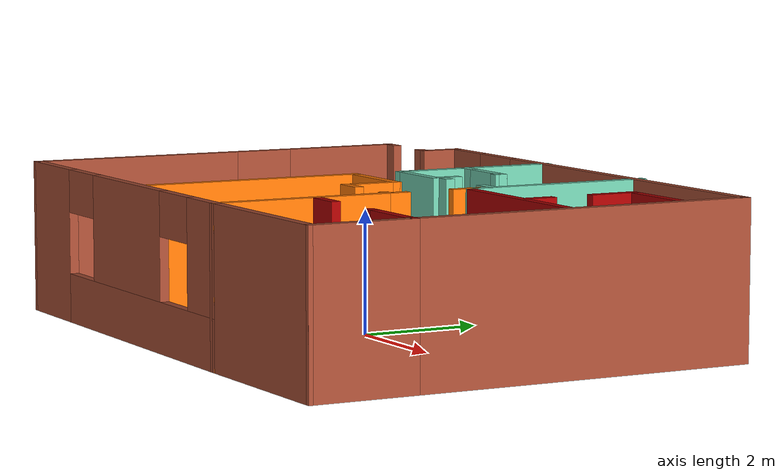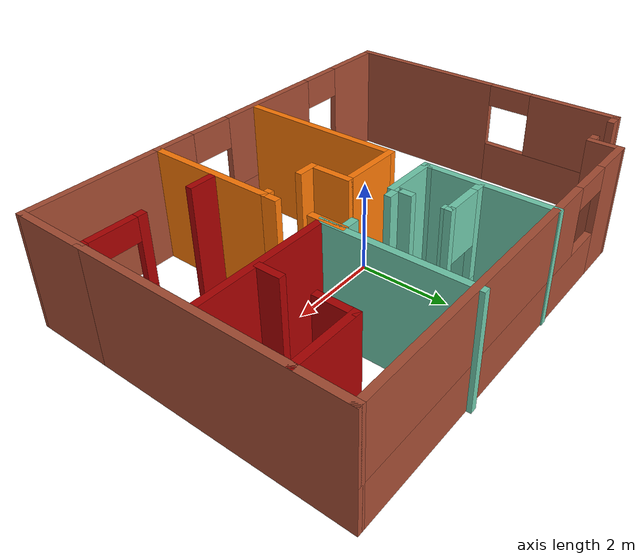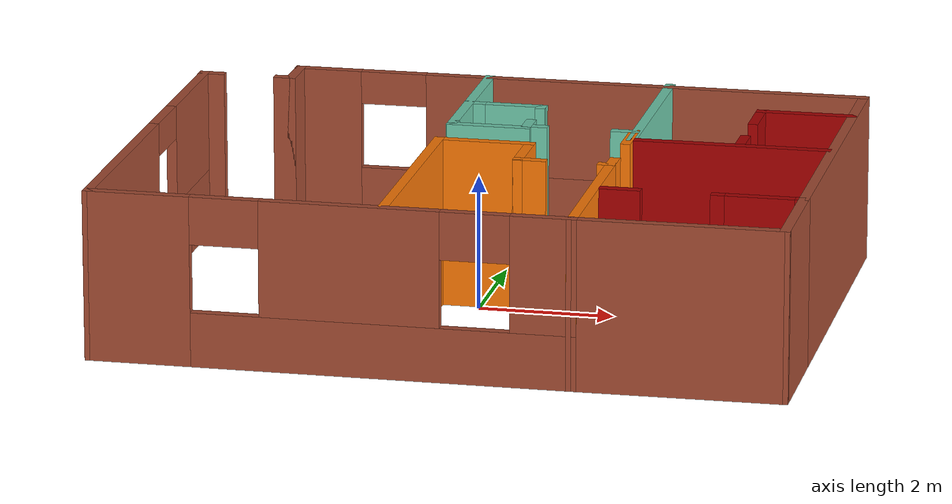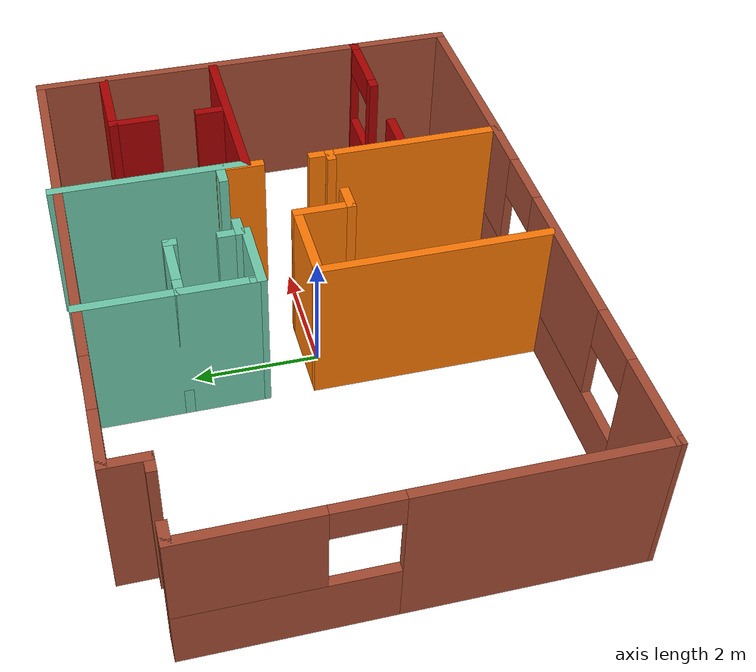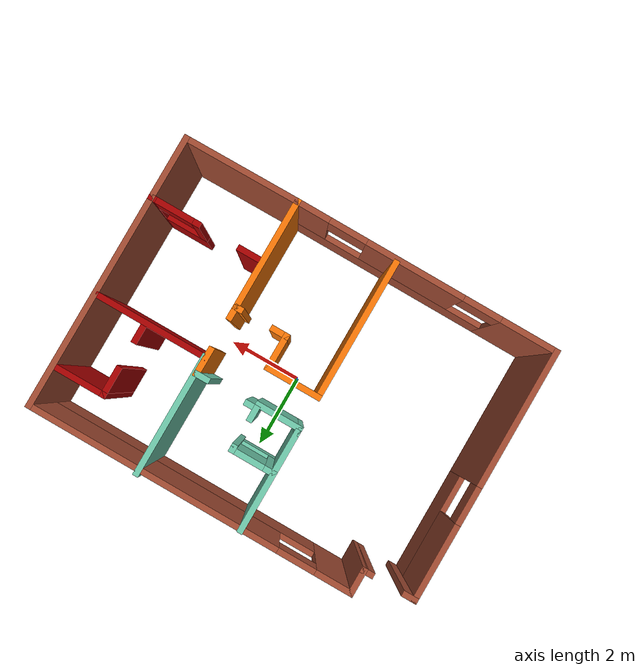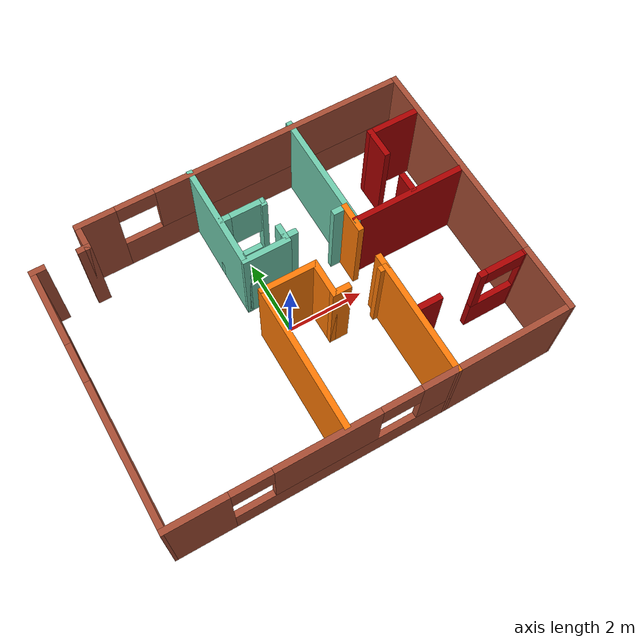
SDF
<?xml version='1.0'?>
<sdf version='1.6'>
  <model name='Building'>
    <pose frame=''>0.096596 0.097797 0 0 -0 0</pose>
    <link name='Wall_0'>
      <pose frame=''>-4.30016 2.9635 0 0 -0 0</pose>
      <visual name='Wall_0_Visual_0'>
        <pose frame=''>-0.550505 0 1.25 0 -0 0</pose>
        <geometry>
          <box>
            <size>0.39899 0.15 2.5</size>
          </box>
        </geometry>
        <material>
          <script>
            <uri>file://media/materials/scripts/gazebo.material</uri>
            <name>Gazebo/Bricks</name>
          </script>
          <ambient>0.666667 0 0 1</ambient>
        </material>
        <meta>
          <layer>0</layer>
        </meta>
      </visual>
      <collision name='Wall_0_Collision_0'>
        <geometry>
          <box>
            <size>0.39899 0.15 2.5</size>
          </box>
        </geometry>
        <pose frame=''>-0.550505 0 1.25 0 -0 0</pose>
      </collision>
      <visual name='Wall_0_Visual_1'>
        <pose frame=''>0.581495 0 1.25 0 -0 0</pose>
        <geometry>
          <box>
            <size>0.33701 0.15 2.5</size>
          </box>
        </geometry>
        <material>
          <script>
            <uri>file://media/materials/scripts/gazebo.material</uri>
            <name>Gazebo/Bricks</name>
          </script>
          <ambient>0.666667 0 0 1</ambient>
        </material>
        <meta>
          <layer>0</layer>
        </meta>
      </visual>
      <collision name='Wall_0_Collision_1'>
        <geometry>
          <box>
            <size>0.33701 0.15 2.5</size>
          </box>
        </geometry>
        <pose frame=''>0.581495 0 1.25 0 -0 0</pose>
      </collision>
    </link>
    <link name='Wall_1'>
      <collision name='Wall_1_Collision'>
        <geometry>
          <box>
            <size>0.75 0.15 2.5</size>
          </box>
        </geometry>
        <pose frame=''>0 0 1.25 0 -0 0</pose>
      </collision>
      <visual name='Wall_1_Visual'>
        <pose frame=''>0 0 1.25 0 -0 0</pose>
        <geometry>
          <box>
            <size>0.75 0.15 2.5</size>
          </box>
        </geometry>
        <material>
          <script>
            <uri>file://media/materials/scripts/gazebo.material</uri>
            <name>Gazebo/Bricks</name>
          </script>
          <ambient>0.666667 0 0 1</ambient>
        </material>
        <meta>
          <layer>0</layer>
        </meta>
      </visual>
      <pose frame=''>-3.62515 3.2635 0 0 -0 1.5708</pose>
    </link>
    <link name='Wall_11'>
      <pose frame=''>0.391864 1.53887 0 0 -0 1.5708</pose>
      <visual name='Wall_11_Visual_0'>
        <pose frame=''>-0.412394 0 1.25 0 -0 0</pose>
        <geometry>
          <box>
            <size>0.425213 0.15 2.5</size>
          </box>
        </geometry>
        <material>
          <script>
            <uri>file://media/materials/scripts/gazebo.material</uri>
            <name>Gazebo/Grey</name>
          </script>
          <ambient>0.435294 0.796078 0.67451 1</ambient>
        </material>
        <meta>
          <layer>0</layer>
        </meta>
      </visual>
      <collision name='Wall_11_Collision_0'>
        <geometry>
          <box>
            <size>0.425213 0.15 2.5</size>
          </box>
        </geometry>
        <pose frame=''>-0.412394 0 1.25 0 -0 0</pose>
      </collision>
      <visual name='Wall_11_Visual_1'>
        <pose frame=''>0.515606 0 1.25 0 -0 0</pose>
        <geometry>
          <box>
            <size>0.218787 0.15 2.5</size>
          </box>
        </geometry>
        <material>
          <script>
            <uri>file://media/materials/scripts/gazebo.material</uri>
            <name>Gazebo/Grey</name>
          </script>
          <ambient>0.435294 0.796078 0.67451 1</ambient>
        </material>
        <meta>
          <layer>0</layer>
        </meta>
      </visual>
      <collision name='Wall_11_Collision_1'>
        <geometry>
          <box>
            <size>0.218787 0.15 2.5</size>
          </box>
        </geometry>
        <pose frame=''>0.515606 0 1.25 0 -0 0</pose>
      </collision>
    </link>
    <link name='Wall_12'>
      <pose frame=''>-0.158136 2.08887 0 0 -0 3.14159</pose>
      <visual name='Wall_12_Visual_0'>
        <pose frame=''>-0.568138 0 1.25 0 -0 0</pose>
        <geometry>
          <box>
            <size>0.113724 0.15 2.5</size>
          </box>
        </geometry>
        <material>
          <script>
            <uri>file://media/materials/scripts/gazebo.material</uri>
            <name>Gazebo/Grey</name>
          </script>
          <ambient>0.435294 0.796078 0.67451 1</ambient>
        </material>
        <meta>
          <layer>0</layer>
        </meta>
      </visual>
      <collision name='Wall_12_Collision_0'>
        <geometry>
          <box>
            <size>0.113724 0.15 2.5</size>
          </box>
        </geometry>
        <pose frame=''>-0.568138 0 1.25 0 -0 0</pose>
      </collision>
      <visual name='Wall_12_Visual_1'>
        <pose frame=''>0.056862 0 0.25 0 -0 0</pose>
        <geometry>
          <box>
            <size>1.13628 0.15 0.5</size>
          </box>
        </geometry>
        <material>
          <script>
            <uri>file://media/materials/scripts/gazebo.material</uri>
            <name>Gazebo/Grey</name>
          </script>
          <ambient>0.435294 0.796078 0.67451 1</ambient>
        </material>
        <meta>
          <layer>0</layer>
        </meta>
      </visual>
      <collision name='Wall_12_Collision_1'>
        <geometry>
          <box>
            <size>1.13628 0.15 0.5</size>
          </box>
        </geometry>
        <pose frame=''>0.056862 0 0.25 0 -0 0</pose>
      </collision>
      <visual name='Wall_12_Visual_2'>
        <pose frame=''>0.456862 0 1.5 0 -0 0</pose>
        <geometry>
          <box>
            <size>0.336276 0.15 2</size>
          </box>
        </geometry>
        <material>
          <script>
            <uri>file://media/materials/scripts/gazebo.material</uri>
            <name>Gazebo/Grey</name>
          </script>
          <ambient>0.435294 0.796078 0.67451 1</ambient>
        </material>
        <meta>
          <layer>0</layer>
        </meta>
      </visual>
      <collision name='Wall_12_Collision_2'>
        <geometry>
          <box>
            <size>0.336276 0.15 2</size>
          </box>
        </geometry>
        <pose frame=''>0.456862 0 1.5 0 -0 0</pose>
      </collision>
      <visual name='Wall_12_Visual_3'>
        <pose frame=''>-0.111276 0 1.9 0 -0 0</pose>
        <geometry>
          <box>
            <size>0.8 0.15 1.2</size>
          </box>
        </geometry>
        <material>
          <script>
            <uri>file://media/materials/scripts/gazebo.material</uri>
            <name>Gazebo/Grey</name>
          </script>
          <ambient>0.435294 0.796078 0.67451 1</ambient>
        </material>
        <meta>
          <layer>0</layer>
        </meta>
      </visual>
      <collision name='Wall_12_Collision_3'>
        <geometry>
          <box>
            <size>0.8 0.15 1.2</size>
          </box>
        </geometry>
        <pose frame=''>-0.111276 0 1.9 0 -0 0</pose>
      </collision>
    </link>
    <link name='Wall_16'>
      <pose frame=''>1.19186 0.988869 0 0 -0 0</pose>
      <visual name='Wall_16_Visual_0'>
        <pose frame=''>-0.680281 0 1.25 0 -0 0</pose>
        <geometry>
          <box>
            <size>0.389438 0.15 2.5</size>
          </box>
        </geometry>
        <material>
          <script>
            <uri>file://media/materials/scripts/gazebo.material</uri>
            <name>Gazebo/Grey</name>
          </script>
          <ambient>0.435294 0.796078 0.67451 1</ambient>
        </material>
        <meta>
          <layer>0</layer>
        </meta>
      </visual>
      <collision name='Wall_16_Collision_0'>
        <geometry>
          <box>
            <size>0.389438 0.15 2.5</size>
          </box>
        </geometry>
        <pose frame=''>-0.680281 0 1.25 0 -0 0</pose>
      </collision>
      <visual name='Wall_16_Visual_1'>
        <pose frame=''>0.663744 0 1.25 0 -0 0</pose>
        <geometry>
          <box>
            <size>0.422512 0.15 2.5</size>
          </box>
        </geometry>
        <material>
          <script>
            <uri>file://media/materials/scripts/gazebo.material</uri>
            <name>Gazebo/Grey</name>
          </script>
          <ambient>0.435294 0.796078 0.67451 1</ambient>
        </material>
        <meta>
          <layer>0</layer>
        </meta>
      </visual>
      <collision name='Wall_16_Collision_1'>
        <geometry>
          <box>
            <size>0.422512 0.15 2.5</size>
          </box>
        </geometry>
        <pose frame=''>0.663744 0 1.25 0 -0 0</pose>
      </collision>
    </link>
    <link name='Wall_18'>
      <collision name='Wall_18_Collision'>
        <geometry>
          <box>
            <size>0.25 0.15 2.5</size>
          </box>
        </geometry>
        <pose frame=''>0 0 1.25 0 -0 0</pose>
      </collision>
      <visual name='Wall_18_Visual'>
        <pose frame=''>0 0 1.25 0 -0 0</pose>
        <geometry>
          <box>
            <size>0.25 0.15 2.5</size>
          </box>
        </geometry>
        <material>
          <script>
            <uri>file://media/materials/scripts/gazebo.material</uri>
            <name>Gazebo/Grey</name>
          </script>
          <ambient>0.435294 0.796078 0.67451 1</ambient>
        </material>
        <meta>
          <layer>0</layer>
        </meta>
      </visual>
      <pose frame=''>-0.708136 0.938869 0 0 0 -1.5708</pose>
    </link>
    <link name='Wall_19'>
      <collision name='Wall_19_Collision'>
        <geometry>
          <box>
            <size>1.25 0.15 2.5</size>
          </box>
        </geometry>
        <pose frame=''>0 0 1.25 0 -0 0</pose>
      </collision>
      <visual name='Wall_19_Visual'>
        <pose frame=''>0 0 1.25 0 -0 0</pose>
        <geometry>
          <box>
            <size>1.25 0.15 2.5</size>
          </box>
        </geometry>
        <material>
          <script>
            <uri>file://media/materials/scripts/gazebo.material</uri>
            <name>Gazebo/Grey</name>
          </script>
          <ambient>0.435294 0.796078 0.67451 1</ambient>
        </material>
        <meta>
          <layer>0</layer>
        </meta>
      </visual>
      <pose frame=''>-0.158136 0.888869 0 0 -0 0</pose>
    </link>
    <link name='Wall_2'>
      <pose frame=''>0.674845 3.5635 0 0 -0 0</pose>
      <visual name='Wall_2_Visual_0'>
        <pose frame=''>-3.86007 0 1.25 0 -0 0</pose>
        <geometry>
          <box>
            <size>1.02985 0.15 2.5</size>
          </box>
        </geometry>
        <material>
          <script>
            <uri>file://media/materials/scripts/gazebo.material</uri>
            <name>Gazebo/Bricks</name>
          </script>
          <ambient>0.666667 0 0 1</ambient>
        </material>
        <meta>
          <layer>0</layer>
        </meta>
      </visual>
      <collision name='Wall_2_Collision_0'>
        <geometry>
          <box>
            <size>1.02985 0.15 2.5</size>
          </box>
        </geometry>
        <pose frame=''>-3.86007 0 1.25 0 -0 0</pose>
      </collision>
      <visual name='Wall_2_Visual_1'>
        <pose frame=''>0.514926 0 0.5 0 -0 0</pose>
        <geometry>
          <box>
            <size>7.72015 0.15 1</size>
          </box>
        </geometry>
        <material>
          <script>
            <uri>file://media/materials/scripts/gazebo.material</uri>
            <name>Gazebo/Bricks</name>
          </script>
          <ambient>0.666667 0 0 1</ambient>
        </material>
        <meta>
          <layer>0</layer>
        </meta>
      </visual>
      <collision name='Wall_2_Collision_1'>
        <geometry>
          <box>
            <size>7.72015 0.15 1</size>
          </box>
        </geometry>
        <pose frame=''>0.514926 0 0.5 0 -0 0</pose>
      </collision>
      <visual name='Wall_2_Visual_2'>
        <pose frame=''>1.01493 0 1.75 0 -0 0</pose>
        <geometry>
          <box>
            <size>6.72015 0.15 1.5</size>
          </box>
        </geometry>
        <material>
          <script>
            <uri>file://media/materials/scripts/gazebo.material</uri>
            <name>Gazebo/Bricks</name>
          </script>
          <ambient>0.666667 0 0 1</ambient>
        </material>
        <meta>
          <layer>0</layer>
        </meta>
      </visual>
      <collision name='Wall_2_Collision_2'>
        <geometry>
          <box>
            <size>6.72015 0.15 1.5</size>
          </box>
        </geometry>
        <pose frame=''>1.01493 0 1.75 0 -0 0</pose>
      </collision>
      <visual name='Wall_2_Visual_3'>
        <pose frame=''>-2.84515 0 2.25 0 -0 0</pose>
        <geometry>
          <box>
            <size>1 0.15 0.5</size>
          </box>
        </geometry>
        <material>
          <script>
            <uri>file://media/materials/scripts/gazebo.material</uri>
            <name>Gazebo/Bricks</name>
          </script>
          <ambient>0.666667 0 0 1</ambient>
        </material>
        <meta>
          <layer>0</layer>
        </meta>
      </visual>
      <collision name='Wall_2_Collision_3'>
        <geometry>
          <box>
            <size>1 0.15 0.5</size>
          </box>
        </geometry>
        <pose frame=''>-2.84515 0 2.25 0 -0 0</pose>
      </collision>
    </link>
    <link name='Wall_3'>
      <collision name='Wall_3_Collision'>
        <geometry>
          <box>
            <size>5.75 0.15 2.5</size>
          </box>
        </geometry>
        <pose frame=''>0 0 1.25 0 -0 0</pose>
      </collision>
      <visual name='Wall_3_Visual'>
        <pose frame=''>0 0 1.25 0 -0 0</pose>
        <geometry>
          <box>
            <size>5.75 0.15 2.5</size>
          </box>
        </geometry>
        <material>
          <script>
            <uri>file://media/materials/scripts/gazebo.material</uri>
            <name>Gazebo/Bricks</name>
          </script>
          <ambient>0.666667 0 0 1</ambient>
        </material>
        <meta>
          <layer>0</layer>
        </meta>
      </visual>
      <pose frame=''>4.97485 0.7635 0 0 0 -1.5708</pose>
    </link>
    <link name='Wall_37'>
      <collision name='Wall_37_Collision'>
        <geometry>
          <box>
            <size>3.25 0.15 2.5</size>
          </box>
        </geometry>
        <pose frame=''>0 0 1.25 0 -0 0</pose>
      </collision>
      <visual name='Wall_37_Visual'>
        <pose frame=''>0 0 1.25 0 -0 0</pose>
        <geometry>
          <box>
            <size>3.25 0.15 2.5</size>
          </box>
        </geometry>
        <material>
          <script>
            <uri>file://media/materials/scripts/gazebo.material</uri>
            <name>Gazebo/Grey</name>
          </script>
          <ambient>0.435294 0.796078 0.67451 1</ambient>
        </material>
        <meta>
          <layer>0</layer>
        </meta>
      </visual>
      <pose frame=''>2.03032 2.10888 0 0 0 -1.5708</pose>
    </link>
    <link name='Wall_39'>
      <collision name='Wall_39_Collision'>
        <geometry>
          <box>
            <size>3.75 0.15 2.5</size>
          </box>
        </geometry>
        <pose frame=''>0 0 1.25 0 -0 0</pose>
      </collision>
      <visual name='Wall_39_Visual'>
        <pose frame=''>0 0 1.25 0 -0 0</pose>
        <geometry>
          <box>
            <size>3.75 0.15 2.5</size>
          </box>
        </geometry>
        <material>
          <script>
            <uri>file://media/materials/scripts/gazebo.material</uri>
            <name>Gazebo/Grey</name>
          </script>
          <ambient>0.996078 0.47451 0.0196078 1</ambient>
        </material>
        <meta>
          <layer>0</layer>
        </meta>
      </visual>
      <pose frame=''>-0.719298 -1.75833 0 0 -0 1.5708</pose>
    </link>
    <link name='Wall_4'>
      <pose frame=''>3.54984 -2.0365 0 0 -0 3.14159</pose>
      <visual name='Wall_4_Visual_0'>
        <pose frame=''>-1.40037 0 1.25 0 -0 0</pose>
        <geometry>
          <box>
            <size>0.199251 0.15 2.5</size>
          </box>
        </geometry>
        <material>
          <script>
            <uri>file://media/materials/scripts/gazebo.material</uri>
            <name>Gazebo/Grey</name>
          </script>
          <ambient>0.666667 0 0 1</ambient>
        </material>
        <meta>
          <layer>0</layer>
        </meta>
      </visual>
      <collision name='Wall_4_Collision_0'>
        <geometry>
          <box>
            <size>0.199251 0.15 2.5</size>
          </box>
        </geometry>
        <pose frame=''>-1.40037 0 1.25 0 -0 0</pose>
      </collision>
      <visual name='Wall_4_Visual_1'>
        <pose frame=''>1.1996 0 1.25 0 -0 0</pose>
        <geometry>
          <box>
            <size>0.600792 0.15 2.5</size>
          </box>
        </geometry>
        <material>
          <script>
            <uri>file://media/materials/scripts/gazebo.material</uri>
            <name>Gazebo/Grey</name>
          </script>
          <ambient>0.666667 0 0 1</ambient>
        </material>
        <meta>
          <layer>0</layer>
        </meta>
      </visual>
      <collision name='Wall_4_Collision_1'>
        <geometry>
          <box>
            <size>0.600792 0.15 2.5</size>
          </box>
        </geometry>
        <pose frame=''>1.1996 0 1.25 0 -0 0</pose>
      </collision>
      <visual name='Wall_4_Visual_2'>
        <pose frame=''>-0.70027 0 0.5 0 -0 0</pose>
        <geometry>
          <box>
            <size>1.20096 0.15 1</size>
          </box>
        </geometry>
        <material>
          <script>
            <uri>file://media/materials/scripts/gazebo.material</uri>
            <name>Gazebo/Grey</name>
          </script>
          <ambient>0.666667 0 0 1</ambient>
        </material>
        <meta>
          <layer>0</layer>
        </meta>
      </visual>
      <collision name='Wall_4_Collision_2'>
        <geometry>
          <box>
            <size>1.20096 0.15 1</size>
          </box>
        </geometry>
        <pose frame=''>-0.70027 0 0.5 0 -0 0</pose>
      </collision>
      <visual name='Wall_4_Visual_3'>
        <pose frame=''>-0.20027 0 1.75 0 -0 0</pose>
        <geometry>
          <box>
            <size>0.200957 0.15 1.5</size>
          </box>
        </geometry>
        <material>
          <script>
            <uri>file://media/materials/scripts/gazebo.material</uri>
            <name>Gazebo/Grey</name>
          </script>
          <ambient>0.666667 0 0 1</ambient>
        </material>
        <meta>
          <layer>0</layer>
        </meta>
      </visual>
      <collision name='Wall_4_Collision_3'>
        <geometry>
          <box>
            <size>0.200957 0.15 1.5</size>
          </box>
        </geometry>
        <pose frame=''>-0.20027 0 1.75 0 -0 0</pose>
      </collision>
      <visual name='Wall_4_Visual_4'>
        <pose frame=''>-0.800749 0 2.25 0 -0 0</pose>
        <geometry>
          <box>
            <size>1 0.15 0.5</size>
          </box>
        </geometry>
        <material>
          <script>
            <uri>file://media/materials/scripts/gazebo.material</uri>
            <name>Gazebo/Grey</name>
          </script>
          <ambient>0.666667 0 0 1</ambient>
        </material>
        <meta>
          <layer>0</layer>
        </meta>
      </visual>
      <collision name='Wall_4_Collision_4'>
        <geometry>
          <box>
            <size>1 0.15 0.5</size>
          </box>
        </geometry>
        <pose frame=''>-0.800749 0 2.25 0 -0 0</pose>
      </collision>
    </link>
    <link name='Wall_50'>
      <collision name='Wall_50_Collision'>
        <geometry>
          <box>
            <size>1.5 0.15 2.5</size>
          </box>
        </geometry>
        <pose frame=''>0 0 1.25 0 -0 0</pose>
      </collision>
      <visual name='Wall_50_Visual'>
        <pose frame=''>0 0 1.25 0 -0 0</pose>
        <geometry>
          <box>
            <size>1.5 0.15 2.5</size>
          </box>
        </geometry>
        <material>
          <script>
            <uri>file://media/materials/scripts/gazebo.material</uri>
            <name>Gazebo/Grey</name>
          </script>
          <ambient>0.996078 0.47451 0.0196078 1</ambient>
        </material>
        <meta>
          <layer>0</layer>
        </meta>
      </visual>
      <pose frame=''>-0.044298 0.041665 0 0 -0 0</pose>
    </link>
    <link name='Wall_51'>
      <collision name='Wall_51_Collision'>
        <geometry>
          <box>
            <size>1 0.15 2.5</size>
          </box>
        </geometry>
        <pose frame=''>0 0 1.25 0 -0 0</pose>
      </collision>
      <visual name='Wall_51_Visual'>
        <pose frame=''>0 0 1.25 0 -0 0</pose>
        <geometry>
          <box>
            <size>1 0.15 2.5</size>
          </box>
        </geometry>
        <material>
          <script>
            <uri>file://media/materials/scripts/gazebo.material</uri>
            <name>Gazebo/Grey</name>
          </script>
          <ambient>0.996078 0.47451 0.0196078 1</ambient>
        </material>
        <meta>
          <layer>0</layer>
        </meta>
      </visual>
      <pose frame=''>0.630702 -0.383335 0 0 0 -1.5708</pose>
    </link>
    <link name='Wall_52'>
      <pose frame=''>1.3057 -0.808335 0 0 -0 0</pose>
      <visual name='Wall_52_Visual_0'>
        <pose frame=''>-0.504705 0 1.25 0 -0 0</pose>
        <geometry>
          <box>
            <size>0.490591 0.15 2.5</size>
          </box>
        </geometry>
        <material>
          <script>
            <uri>file://media/materials/scripts/gazebo.material</uri>
            <name>Gazebo/Grey</name>
          </script>
          <ambient>0.996078 0.47451 0.0196078 1</ambient>
        </material>
        <meta>
          <layer>0</layer>
        </meta>
      </visual>
      <collision name='Wall_52_Collision_0'>
        <geometry>
          <box>
            <size>0.490591 0.15 2.5</size>
          </box>
        </geometry>
        <pose frame=''>-0.504705 0 1.25 0 -0 0</pose>
      </collision>
      <visual name='Wall_52_Visual_1'>
        <pose frame=''>0.617295 0 1.25 0 -0 0</pose>
        <geometry>
          <box>
            <size>0.265409 0.15 2.5</size>
          </box>
        </geometry>
        <material>
          <script>
            <uri>file://media/materials/scripts/gazebo.material</uri>
            <name>Gazebo/Grey</name>
          </script>
          <ambient>0.996078 0.47451 0.0196078 1</ambient>
        </material>
        <meta>
          <layer>0</layer>
        </meta>
      </visual>
      <collision name='Wall_52_Collision_1'>
        <geometry>
          <box>
            <size>0.265409 0.15 2.5</size>
          </box>
        </geometry>
        <pose frame=''>0.617295 0 1.25 0 -0 0</pose>
      </collision>
    </link>
    <link name='Wall_54'>
      <collision name='Wall_54_Collision'>
        <geometry>
          <box>
            <size>3 0.15 2.5</size>
          </box>
        </geometry>
        <pose frame=''>0 0 1.25 0 -0 0</pose>
      </collision>
      <visual name='Wall_54_Visual'>
        <pose frame=''>0 0 1.25 0 -0 0</pose>
        <geometry>
          <box>
            <size>3 0.15 2.5</size>
          </box>
        </geometry>
        <material>
          <script>
            <uri>file://media/materials/scripts/gazebo.material</uri>
            <name>Gazebo/Grey</name>
          </script>
          <ambient>0.996078 0.47451 0.0196078 1</ambient>
        </material>
        <meta>
          <layer>0</layer>
        </meta>
      </visual>
      <pose frame=''>1.9807 -2.23333 0 0 0 -1.5708</pose>
    </link>
    <link name='Wall_56'>
      <pose frame=''>-1.49723 -3.64742 0 0 0 -0.003139</pose>
      <visual name='Wall_56_Visual_0'>
        <pose frame=''>-2.77726 0 1.25 0 -0 0</pose>
        <geometry>
          <box>
            <size>1.55137 0.15 2.5</size>
          </box>
        </geometry>
        <material>
          <script>
            <uri>file://media/materials/scripts/gazebo.material</uri>
            <name>Gazebo/Bricks</name>
          </script>
          <ambient>0.666667 0 0 1</ambient>
        </material>
        <meta>
          <layer>0</layer>
        </meta>
      </visual>
      <collision name='Wall_56_Collision_0'>
        <geometry>
          <box>
            <size>1.55137 0.15 2.5</size>
          </box>
        </geometry>
        <pose frame=''>-2.77726 0 1.25 0 -0 0</pose>
      </collision>
      <visual name='Wall_56_Visual_1'>
        <pose frame=''>0.775684 0 0.4 0 -0 0</pose>
        <geometry>
          <box>
            <size>5.55452 0.15 0.8</size>
          </box>
        </geometry>
        <material>
          <script>
            <uri>file://media/materials/scripts/gazebo.material</uri>
            <name>Gazebo/Bricks</name>
          </script>
          <ambient>0.666667 0 0 1</ambient>
        </material>
        <meta>
          <layer>0</layer>
        </meta>
      </visual>
      <collision name='Wall_56_Collision_1'>
        <geometry>
          <box>
            <size>5.55452 0.15 0.8</size>
          </box>
        </geometry>
        <pose frame=''>0.775684 0 0.4 0 -0 0</pose>
      </collision>
      <visual name='Wall_56_Visual_2'>
        <pose frame=''>0.299823 0 1.65 0 -0 0</pose>
        <geometry>
          <box>
            <size>2.6028 0.15 1.7</size>
          </box>
        </geometry>
        <material>
          <script>
            <uri>file://media/materials/scripts/gazebo.material</uri>
            <name>Gazebo/Bricks</name>
          </script>
          <ambient>0.666667 0 0 1</ambient>
        </material>
        <meta>
          <layer>0</layer>
        </meta>
      </visual>
      <collision name='Wall_56_Collision_2'>
        <geometry>
          <box>
            <size>2.6028 0.15 1.7</size>
          </box>
        </geometry>
        <pose frame=''>0.299823 0 1.65 0 -0 0</pose>
      </collision>
      <visual name='Wall_56_Visual_3'>
        <pose frame=''>3.07708 0 1.65 0 -0 0</pose>
        <geometry>
          <box>
            <size>0.951723 0.15 1.7</size>
          </box>
        </geometry>
        <material>
          <script>
            <uri>file://media/materials/scripts/gazebo.material</uri>
            <name>Gazebo/Bricks</name>
          </script>
          <ambient>0.666667 0 0 1</ambient>
        </material>
        <meta>
          <layer>0</layer>
        </meta>
      </visual>
      <collision name='Wall_56_Collision_3'>
        <geometry>
          <box>
            <size>0.951723 0.15 1.7</size>
          </box>
        </geometry>
        <pose frame=''>3.07708 0 1.65 0 -0 0</pose>
      </collision>
      <visual name='Wall_56_Visual_4'>
        <pose frame=''>-1.50158 0 2.15 0 -0 0</pose>
        <geometry>
          <box>
            <size>1 0.15 0.7</size>
          </box>
        </geometry>
        <material>
          <script>
            <uri>file://media/materials/scripts/gazebo.material</uri>
            <name>Gazebo/Bricks</name>
          </script>
          <ambient>0.666667 0 0 1</ambient>
        </material>
        <meta>
          <layer>0</layer>
        </meta>
      </visual>
      <collision name='Wall_56_Collision_4'>
        <geometry>
          <box>
            <size>1 0.15 0.7</size>
          </box>
        </geometry>
        <pose frame=''>-1.50158 0 2.15 0 -0 0</pose>
      </collision>
      <visual name='Wall_56_Visual_5'>
        <pose frame=''>2.10122 0 2.15 0 -0 0</pose>
        <geometry>
          <box>
            <size>1 0.15 0.7</size>
          </box>
        </geometry>
        <material>
          <script>
            <uri>file://media/materials/scripts/gazebo.material</uri>
            <name>Gazebo/Bricks</name>
          </script>
          <ambient>0.666667 0 0 1</ambient>
        </material>
        <meta>
          <layer>0</layer>
        </meta>
      </visual>
      <collision name='Wall_56_Collision_5'>
        <geometry>
          <box>
            <size>1 0.15 0.7</size>
          </box>
        </geometry>
        <pose frame=''>2.10122 0 2.15 0 -0 0</pose>
      </collision>
    </link>
    <link name='Wall_58'>
      <pose frame=''>1.98628 0.090267 0 0 -0 1.56458</pose>
      <visual name='Wall_58_Visual_0'>
        <pose frame=''>-0.761715 0 1.25 0 -0 0</pose>
        <geometry>
          <box>
            <size>0.423808 0.15 2.5</size>
          </box>
        </geometry>
        <material>
          <script>
            <uri>file://media/materials/scripts/gazebo.material</uri>
            <name>Gazebo/Grey</name>
          </script>
          <ambient>0.996078 0.47451 0.0196078 1</ambient>
        </material>
        <meta>
          <layer>0</layer>
        </meta>
      </visual>
      <collision name='Wall_58_Collision_0'>
        <geometry>
          <box>
            <size>0.423808 0.15 2.5</size>
          </box>
        </geometry>
        <pose frame=''>-0.761715 0 1.25 0 -0 0</pose>
      </collision>
      <visual name='Wall_58_Visual_1'>
        <pose frame=''>0.577384 0 1.25 0 -0 0</pose>
        <geometry>
          <box>
            <size>0.792471 0.15 2.5</size>
          </box>
        </geometry>
        <material>
          <script>
            <uri>file://media/materials/scripts/gazebo.material</uri>
            <name>Gazebo/Grey</name>
          </script>
          <ambient>0.996078 0.47451 0.0196078 1</ambient>
        </material>
        <meta>
          <layer>0</layer>
        </meta>
      </visual>
      <collision name='Wall_58_Collision_1'>
        <geometry>
          <box>
            <size>0.792471 0.15 2.5</size>
          </box>
        </geometry>
        <pose frame=''>0.577384 0 1.25 0 -0 0</pose>
      </collision>
    </link>
    <link name='Wall_60'>
      <collision name='Wall_60_Collision'>
        <geometry>
          <box>
            <size>1.75 0.15 2.5</size>
          </box>
        </geometry>
        <pose frame=''>0 0 1.25 0 -0 0</pose>
      </collision>
      <visual name='Wall_60_Visual'>
        <pose frame=''>0 0 1.25 0 -0 0</pose>
        <geometry>
          <box>
            <size>1.75 0.15 2.5</size>
          </box>
        </geometry>
        <material>
          <script>
            <uri>file://media/materials/scripts/gazebo.material</uri>
            <name>Gazebo/Bricks</name>
          </script>
          <ambient>0.666667 0 0 1</ambient>
        </material>
        <meta>
          <layer>0</layer>
        </meta>
      </visual>
      <pose frame=''>4.97485 -2.8365 0 0 0 -1.5708</pose>
    </link>
    <link name='Wall_61'>
      <collision name='Wall_61_Collision'>
        <geometry>
          <box>
            <size>3.14422 0.15 2.5</size>
          </box>
        </geometry>
        <pose frame=''>0 0 1.25 0 -0 0</pose>
      </collision>
      <visual name='Wall_61_Visual'>
        <pose frame=''>0 0 1.25 0 -0 0</pose>
        <geometry>
          <box>
            <size>3.14422 0.15 2.5</size>
          </box>
        </geometry>
        <material>
          <script>
            <uri>file://media/materials/scripts/gazebo.material</uri>
            <name>Gazebo/Bricks</name>
          </script>
          <ambient>0.666667 0 0 1</ambient>
        </material>
        <meta>
          <layer>0</layer>
        </meta>
      </visual>
      <pose frame=''>3.47777 -3.64742 0 0 0 -3.1343</pose>
    </link>
    <link name='Wall_63'>
      <collision name='Wall_63_Collision'>
        <geometry>
          <box>
            <size>1.5 0.15 2.5</size>
          </box>
        </geometry>
        <pose frame=''>0 0 1.25 0 -0 0</pose>
      </collision>
      <visual name='Wall_63_Visual'>
        <pose frame=''>0 0 1.25 0 -0 0</pose>
        <geometry>
          <box>
            <size>1.5 0.15 2.5</size>
          </box>
        </geometry>
        <material>
          <script>
            <uri>file://media/materials/scripts/gazebo.material</uri>
            <name>Gazebo/Grey</name>
          </script>
          <ambient>0.666667 0 0 1</ambient>
        </material>
        <meta>
          <layer>0</layer>
        </meta>
      </visual>
      <pose frame=''>4.28835 2.48996 0 0 -0 3.14159</pose>
    </link>
    <link name='Wall_64'>
      <pose frame=''>3.61335 1.56496 0 0 0 -1.5708</pose>
      <visual name='Wall_64_Visual_0'>
        <pose frame=''>-0.582062 0 1.25 0 -0 0</pose>
        <geometry>
          <box>
            <size>0.835877 0.15 2.5</size>
          </box>
        </geometry>
        <material>
          <script>
            <uri>file://media/materials/scripts/gazebo.material</uri>
            <name>Gazebo/Grey</name>
          </script>
          <ambient>0.666667 0 0 1</ambient>
        </material>
        <meta>
          <layer>0</layer>
        </meta>
      </visual>
      <collision name='Wall_64_Collision_0'>
        <geometry>
          <box>
            <size>0.835877 0.15 2.5</size>
          </box>
        </geometry>
        <pose frame=''>-0.582062 0 1.25 0 -0 0</pose>
      </collision>
      <visual name='Wall_64_Visual_1'>
        <pose frame=''>0.727938 0 1.25 0 -0 0</pose>
        <geometry>
          <box>
            <size>0.544123 0.15 2.5</size>
          </box>
        </geometry>
        <material>
          <script>
            <uri>file://media/materials/scripts/gazebo.material</uri>
            <name>Gazebo/Grey</name>
          </script>
          <ambient>0.666667 0 0 1</ambient>
        </material>
        <meta>
          <layer>0</layer>
        </meta>
      </visual>
      <collision name='Wall_64_Collision_1'>
        <geometry>
          <box>
            <size>0.544123 0.15 2.5</size>
          </box>
        </geometry>
        <pose frame=''>0.727938 0 1.25 0 -0 0</pose>
      </collision>
    </link>
    <link name='Wall_66'>
      <collision name='Wall_66_Collision'>
        <geometry>
          <box>
            <size>3 0.15 2.5</size>
          </box>
        </geometry>
        <pose frame=''>0 0 1.25 0 -0 0</pose>
      </collision>
      <visual name='Wall_66_Visual'>
        <pose frame=''>0 0 1.25 0 -0 0</pose>
        <geometry>
          <box>
            <size>3 0.15 2.5</size>
          </box>
        </geometry>
        <material>
          <script>
            <uri>file://media/materials/scripts/gazebo.material</uri>
            <name>Gazebo/Grey</name>
          </script>
          <ambient>0.666667 0 0 1</ambient>
        </material>
        <meta>
          <layer>0</layer>
        </meta>
      </visual>
      <pose frame=''>3.45533 0.55888 0 0 -0 0</pose>
    </link>
    <link name='Wall_7'>
      <pose frame=''>-4.97515 -0.3365 0 0 -0 1.5708</pose>
      <visual name='Wall_7_Visual_0'>
        <pose frame=''>-1.53025 0 1.25 0 -0 0</pose>
        <geometry>
          <box>
            <size>3.6895 0.15 2.5</size>
          </box>
        </geometry>
        <material>
          <script>
            <uri>file://media/materials/scripts/gazebo.material</uri>
            <name>Gazebo/Bricks</name>
          </script>
          <ambient>0.666667 0 0 1</ambient>
        </material>
        <meta>
          <layer>0</layer>
        </meta>
      </visual>
      <collision name='Wall_7_Collision_0'>
        <geometry>
          <box>
            <size>3.6895 0.15 2.5</size>
          </box>
        </geometry>
        <pose frame=''>-1.53025 0 1.25 0 -0 0</pose>
      </collision>
      <visual name='Wall_7_Visual_1'>
        <pose frame=''>1.84475 0 0.5 0 -0 0</pose>
        <geometry>
          <box>
            <size>3.0605 0.15 1</size>
          </box>
        </geometry>
        <material>
          <script>
            <uri>file://media/materials/scripts/gazebo.material</uri>
            <name>Gazebo/Bricks</name>
          </script>
          <ambient>0.666667 0 0 1</ambient>
        </material>
        <meta>
          <layer>0</layer>
        </meta>
      </visual>
      <collision name='Wall_7_Collision_1'>
        <geometry>
          <box>
            <size>3.0605 0.15 1</size>
          </box>
        </geometry>
        <pose frame=''>1.84475 0 0.5 0 -0 0</pose>
      </collision>
      <visual name='Wall_7_Visual_2'>
        <pose frame=''>2.34475 0 1.75 0 -0 0</pose>
        <geometry>
          <box>
            <size>2.0605 0.15 1.5</size>
          </box>
        </geometry>
        <material>
          <script>
            <uri>file://media/materials/scripts/gazebo.material</uri>
            <name>Gazebo/Bricks</name>
          </script>
          <ambient>0.666667 0 0 1</ambient>
        </material>
        <meta>
          <layer>0</layer>
        </meta>
      </visual>
      <collision name='Wall_7_Collision_2'>
        <geometry>
          <box>
            <size>2.0605 0.15 1.5</size>
          </box>
        </geometry>
        <pose frame=''>2.34475 0 1.75 0 -0 0</pose>
      </collision>
      <visual name='Wall_7_Visual_3'>
        <pose frame=''>0.814501 0 2.25 0 -0 0</pose>
        <geometry>
          <box>
            <size>1 0.15 0.5</size>
          </box>
        </geometry>
        <material>
          <script>
            <uri>file://media/materials/scripts/gazebo.material</uri>
            <name>Gazebo/Bricks</name>
          </script>
          <ambient>0.666667 0 0 1</ambient>
        </material>
        <meta>
          <layer>0</layer>
        </meta>
      </visual>
      <collision name='Wall_7_Collision_3'>
        <geometry>
          <box>
            <size>1 0.15 0.5</size>
          </box>
        </geometry>
        <pose frame=''>0.814501 0 2.25 0 -0 0</pose>
      </collision>
    </link>
    <link name='Wall_9'>
      <collision name='Wall_9_Collision'>
        <geometry>
          <box>
            <size>2.75 0.15 2.5</size>
          </box>
        </geometry>
        <pose frame=''>0 0 1.25 0 -0 0</pose>
      </collision>
      <visual name='Wall_9_Visual'>
        <pose frame=''>0 0 1.25 0 -0 0</pose>
        <geometry>
          <box>
            <size>2.75 0.15 2.5</size>
          </box>
        </geometry>
        <material>
          <script>
            <uri>file://media/materials/scripts/gazebo.material</uri>
            <name>Gazebo/Grey</name>
          </script>
          <ambient>0.435294 0.796078 0.67451 1</ambient>
        </material>
        <meta>
          <layer>0</layer>
        </meta>
      </visual>
      <pose frame=''>-0.708136 2.28887 0 0 0 -1.5708</pose>
    </link>
    <static>1</static>
  </model>
</sdf>
